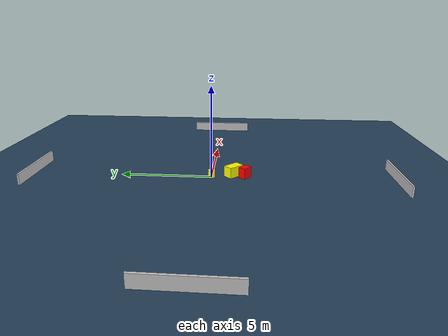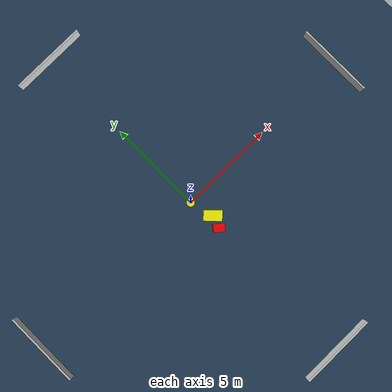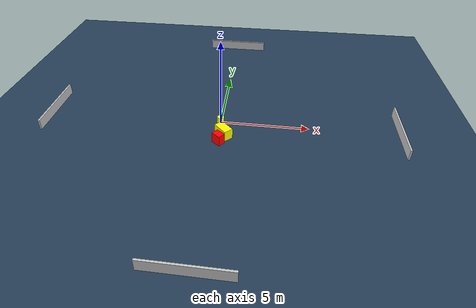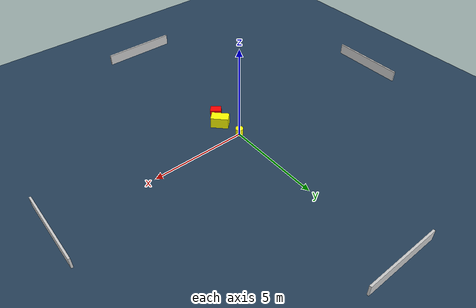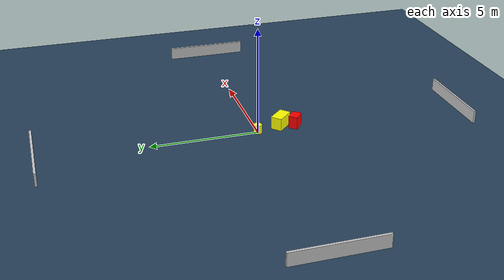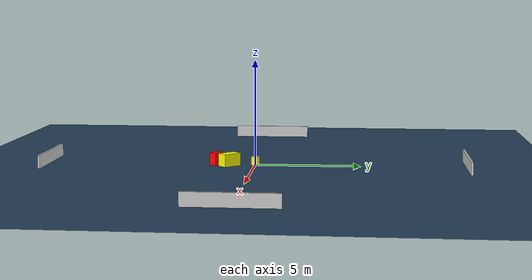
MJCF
<?xml version="1.0" ?>
<mujoco model="generated_environment">
  <option timestep="0.01" integrator="RK4" cone="elliptic"/>
  <default>
    <geom density="1"/>
  </default>
  <asset>
    <texture builtin="gradient" height="3072" name="skybox" rgb1="0.3 0.5 0.7" rgb2="0 0 0" type="skybox" width="512"/>
    <texture builtin="checker" height="300" name="groundplane" rgb1="0.2 0.3 0.4" rgb2="0.1 0.2 0.3" type="2d" width="300"/>
    <material name="groundplane" reflectance="0.2" texrepeat="5 5" texture="groundplane"/>
  </asset>
  <worldbody>
    <light dir="0 0 -1" directional="true" pos="0 0 1.5"/>
    <geom condim="3" friction="0.5 0.005 0.001" material="groundplane" name="floor" pos="0 0 0" size="0 0 0.05" type="plane"/>
    <body name="walls">
      <geom name="wall_1" condim="4" pos="-10.0 0.0 0.3" rgba="0.800000011920929 0.800000011920929 0.800000011920929 1.0" size="0.05 2.0 0.3" type="box"/>
      <geom name="wall_2" condim="4" pos="10.0 0.0 0.3" rgba="0.800000011920929 0.800000011920929 0.800000011920929 1.0" size="0.05 2.0 0.3" type="box"/>
      <geom name="wall_3" condim="4" pos="0.0 -10.0 0.3" rgba="0.800000011920929 0.800000011920929 0.800000011920929 1.0" size="2.0 0.05 0.3" type="box"/>
      <geom name="wall_4" condim="4" pos="0.0 10.0 0.3" rgba="0.800000011920929 0.800000011920929 0.800000011920929 1.0" size="2.0 0.05 0.3" type="box"/>
    </body>
    <body name="robot">
      <joint name="joint_x" type="slide" pos="0 0 0" axis="1 0 0"/>
      <joint name="joint_y" type="slide" pos="0 0 0" axis="0 1 0"/>
      <geom name="robot" type="cylinder" pos="0.0 0.0 0.2" size="0.2 0.2 0.0" mass="5.0" friction="1.0 0.005 0.0001" condim="4" rgba="1.0 1.0 0.0 1.0"/>
    </body>
    <body name="obstacle_1_movable">
      <geom name="obstacle_1_movable" condim="4" pos="0.3146779873365828 -1.2074432295448547 0.3" euler="0 0 224.20031109828912" friction="0.0 0.005 0.001" rgba="1.0 1.0 0.0 1.0" size="0.2647503448909373 0.45988741560999 0.3" type="box" mass="0.1"/>
      <joint type="free"/>
    </body>
    <body name="obstacle_2_static">
      <geom name="obstacle_2_static" condim="4" pos="0.10789184825213147 -1.8391884902231976 0.3" euler="0 0 51.48118262421712" friction="0.0 0.005 0.001" rgba="1.0 0.0 0.0 1.0" size="0.21006513410609357 0.28620320344399114 0.3" type="box"/>
    </body>
  </worldbody>
  <actuator>
    <motor name="actuator_x" joint="joint_x" gear="1" ctrlrange="-1 1"/>
    <motor name="actuator_y" joint="joint_y" gear="1" ctrlrange="-1 1"/>
  </actuator>
</mujoco>
